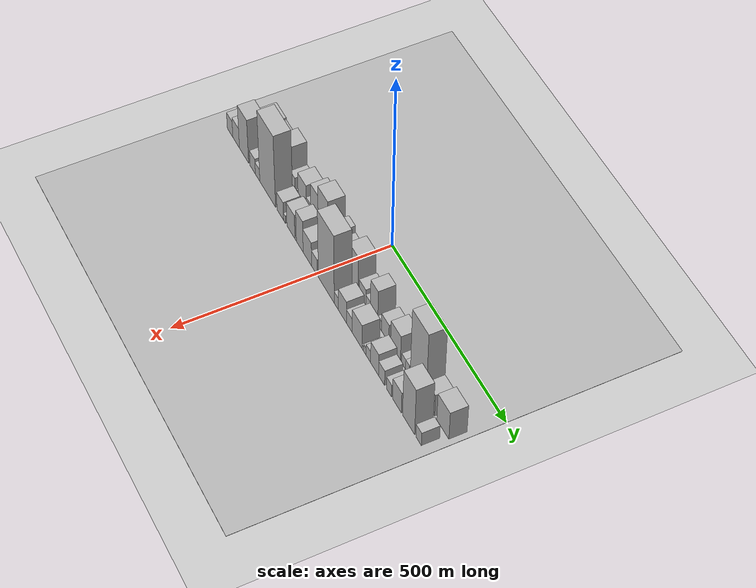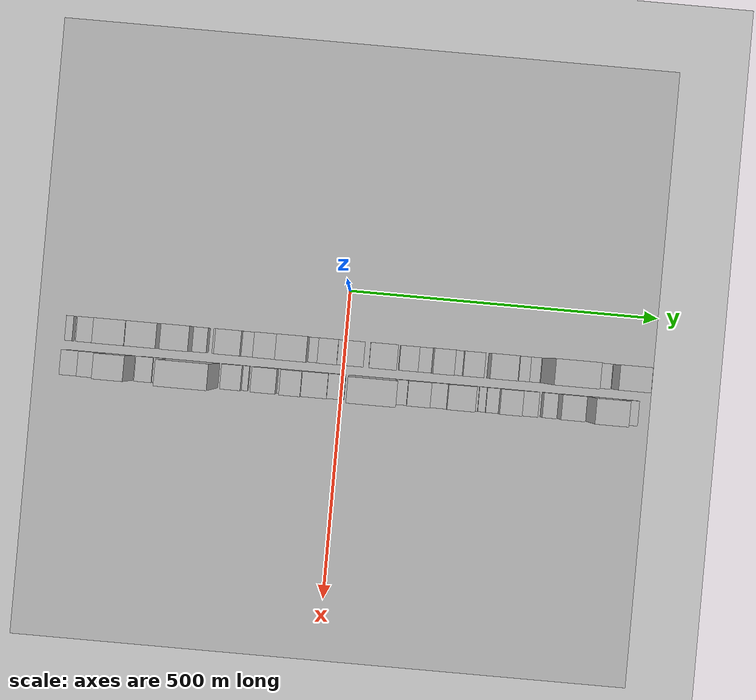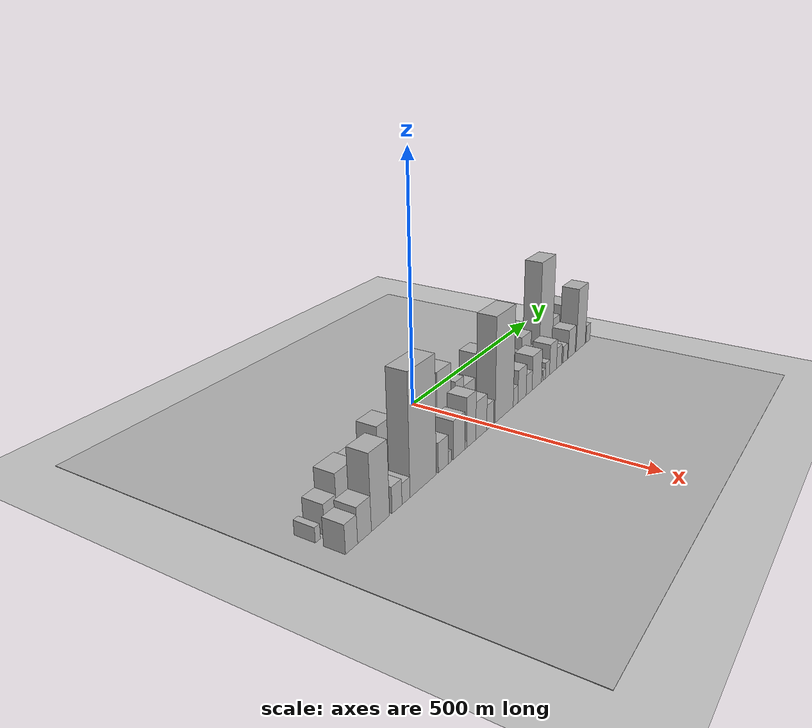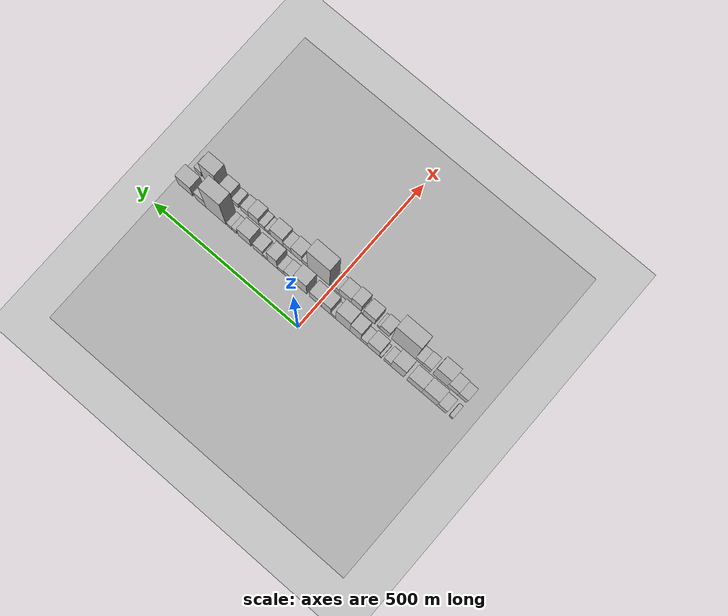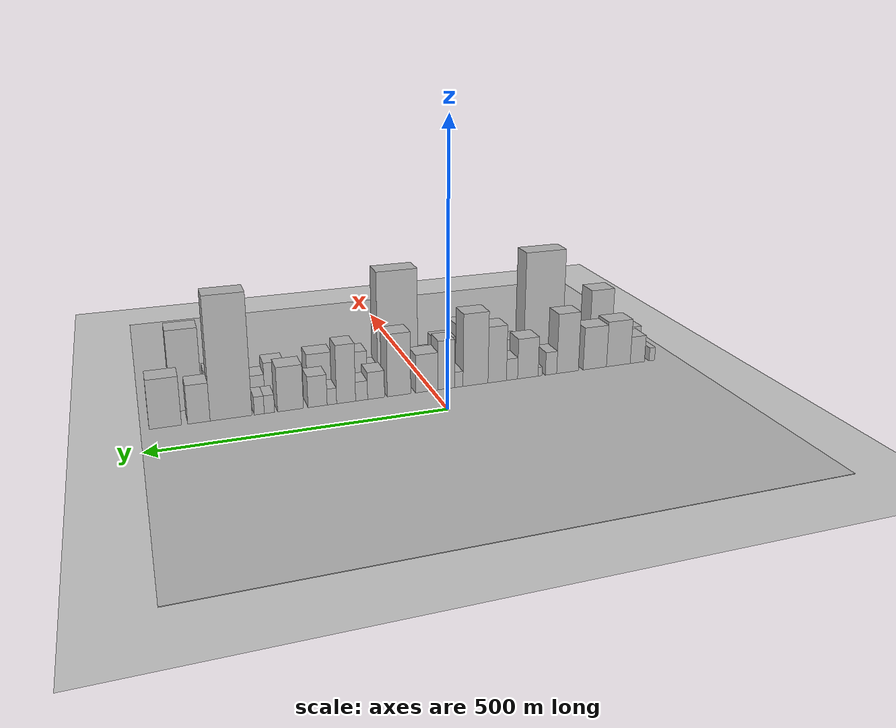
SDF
<sdf version="1.6">
 <world name="default">
  <include><name>ground_plane_1</name><uri>model://HANNAS_ground_plane</uri></include>
  <include>
   <name>ground_plane_2</name>
   <uri>model://HANNAS_ground_plane</uri>
   <pose>100 0 0  0 0 0</pose>
  </include>
  <model name="building_1">
   <static>1</static>
   <pose>100.0000 -443.9677 0 0.000000 0.000000 0.000000</pose>
   <link name="link">
    <pose>0 0 13.50 0 0 0</pose>
    <collision name="collision"><geometry><box><size>40.0000 12.0645 27.0000</size></box></geometry></collision>
    <visual name="visual">
     <cast_shadows>0</cast_shadows>
     <geometry><box><size>40.0000 12.0645 27.0000</size></box></geometry>
     <material>
      <script>
       <uri>model://HANNAS_wall/materials/scripts</uri>
       <uri>model://HANNAS_wall/materials/textures</uri>
       <name>vrc/HANNAS_wall</name>
      </script>
     </material>
    </visual>
   </link>
  </model>
  <model name="building_2">
   <static>1</static>
   <pose>100.0000 -412.5164 0 0.000000 0.000000 0.000000</pose>
   <link name="link">
    <pose>0 0 27.00 0 0 0</pose>
    <collision name="collision"><geometry><box><size>40.0000 30.8381 54.0000</size></box></geometry></collision>
    <visual name="visual">
     <cast_shadows>0</cast_shadows>
     <geometry><box><size>40.0000 30.8381 54.0000</size></box></geometry>
     <material>
      <script>
       <uri>model://HANNAS_wall/materials/scripts</uri>
       <uri>model://HANNAS_wall/materials/textures</uri>
       <name>vrc/HANNAS_wall</name>
      </script>
     </material>
    </visual>
   </link>
  </model>
  <model name="building_3">
   <static>1</static>
   <pose>100.0000 -371.8152 0 0.000000 0.000000 0.000000</pose>
   <link name="link">
    <pose>0 0 45.00 0 0 0</pose>
    <collision name="collision"><geometry><box><size>40.0000 50.5644 90.0000</size></box></geometry></collision>
    <visual name="visual">
     <cast_shadows>0</cast_shadows>
     <geometry><box><size>40.0000 50.5644 90.0000</size></box></geometry>
     <material>
      <script>
       <uri>model://HANNAS_wall/materials/scripts</uri>
       <uri>model://HANNAS_wall/materials/textures</uri>
       <name>vrc/HANNAS_wall</name>
      </script>
     </material>
    </visual>
   </link>
  </model>
  <model name="building_4">
   <static>1</static>
   <pose>100.0000 -322.0864 0 0.000000 0.000000 0.000000</pose>
   <link name="link">
    <pose>0 0 42.00 0 0 0</pose>
    <collision name="collision"><geometry><box><size>40.0000 48.8930 84.0000</size></box></geometry></collision>
    <visual name="visual">
     <cast_shadows>0</cast_shadows>
     <geometry><box><size>40.0000 48.8930 84.0000</size></box></geometry>
     <material>
      <script>
       <uri>model://HANNAS_wall/materials/scripts</uri>
       <uri>model://HANNAS_wall/materials/textures</uri>
       <name>vrc/HANNAS_wall</name>
      </script>
     </material>
    </visual>
   </link>
  </model>
  <model name="building_5">
   <static>1</static>
   <pose>100.0000 -265.3975 0 0.000000 0.000000 0.000000</pose>
   <link name="link">
    <pose>0 0 58.50 0 0 0</pose>
    <collision name="collision"><geometry><box><size>40.0000 44.4849 117.0000</size></box></geometry></collision>
    <visual name="visual">
     <cast_shadows>0</cast_shadows>
     <geometry><box><size>40.0000 44.4849 117.0000</size></box></geometry>
     <material>
      <script>
       <uri>model://HANNAS_wall/materials/scripts</uri>
       <uri>model://HANNAS_wall/materials/textures</uri>
       <name>vrc/HANNAS_wall</name>
      </script>
     </material>
    </visual>
   </link>
  </model>
  <model name="building_6">
   <static>1</static>
   <pose>100.0000 -231.6720 0 0.000000 0.000000 0.000000</pose>
   <link name="link">
    <pose>0 0 22.50 0 0 0</pose>
    <collision name="collision"><geometry><box><size>40.0000 22.9660 45.0000</size></box></geometry></collision>
    <visual name="visual">
     <cast_shadows>0</cast_shadows>
     <geometry><box><size>40.0000 22.9660 45.0000</size></box></geometry>
     <material>
      <script>
       <uri>model://HANNAS_wall/materials/scripts</uri>
       <uri>model://HANNAS_wall/materials/textures</uri>
       <name>vrc/HANNAS_wall</name>
      </script>
     </material>
    </visual>
   </link>
  </model>
  <model name="building_7">
   <static>1</static>
   <pose>100.0000 -209.3410 0 0.000000 0.000000 0.000000</pose>
   <link name="link">
    <pose>0 0 9.00 0 0 0</pose>
    <collision name="collision"><geometry><box><size>40.0000 7.6959 18.0000</size></box></geometry></collision>
    <visual name="visual">
     <cast_shadows>0</cast_shadows>
     <geometry><box><size>40.0000 7.6959 18.0000</size></box></geometry>
     <material>
      <script>
       <uri>model://HANNAS_wall/materials/scripts</uri>
       <uri>model://HANNAS_wall/materials/textures</uri>
       <name>vrc/HANNAS_wall</name>
      </script>
     </material>
    </visual>
   </link>
  </model>
  <model name="building_8">
   <static>1</static>
   <pose>100.0000 -184.9695 0 0.000000 0.000000 0.000000</pose>
   <link name="link">
    <pose>0 0 39.00 0 0 0</pose>
    <collision name="collision"><geometry><box><size>40.0000 41.0471 78.0000</size></box></geometry></collision>
    <visual name="visual">
     <cast_shadows>0</cast_shadows>
     <geometry><box><size>40.0000 41.0471 78.0000</size></box></geometry>
     <material>
      <script>
       <uri>model://HANNAS_wall/materials/scripts</uri>
       <uri>model://HANNAS_wall/materials/textures</uri>
       <name>vrc/HANNAS_wall</name>
      </script>
     </material>
    </visual>
   </link>
  </model>
  <model name="building_9">
   <static>1</static>
   <pose>100.0000 -153.3758 0 0.000000 0.000000 0.000000</pose>
   <link name="link">
    <pose>0 0 21.00 0 0 0</pose>
    <collision name="collision"><geometry><box><size>40.0000 22.1403 42.0000</size></box></geometry></collision>
    <visual name="visual">
     <cast_shadows>0</cast_shadows>
     <geometry><box><size>40.0000 22.1403 42.0000</size></box></geometry>
     <material>
      <script>
       <uri>model://HANNAS_wall/materials/scripts</uri>
       <uri>model://HANNAS_wall/materials/textures</uri>
       <name>vrc/HANNAS_wall</name>
      </script>
     </material>
    </visual>
   </link>
  </model>
  <model name="building_10">
   <static>1</static>
   <pose>100.0000 -124.2434 0 0.000000 0.000000 0.000000</pose>
   <link name="link">
    <pose>0 0 54.00 0 0 0</pose>
    <collision name="collision"><geometry><box><size>40.0000 36.1245 108.0000</size></box></geometry></collision>
    <visual name="visual">
     <cast_shadows>0</cast_shadows>
     <geometry><box><size>40.0000 36.1245 108.0000</size></box></geometry>
     <material>
      <script>
       <uri>model://HANNAS_wall/materials/scripts</uri>
       <uri>model://HANNAS_wall/materials/textures</uri>
       <name>vrc/HANNAS_wall</name>
      </script>
     </material>
    </visual>
   </link>
  </model>
  <model name="building_11">
   <static>1</static>
   <pose>100.0000 -82.0529 0 0.000000 0.000000 0.000000</pose>
   <link name="link">
    <pose>0 0 69.00 0 0 0</pose>
    <collision name="collision"><geometry><box><size>40.0000 48.2566 138.0000</size></box></geometry></collision>
    <visual name="visual">
     <cast_shadows>0</cast_shadows>
     <geometry><box><size>40.0000 48.2566 138.0000</size></box></geometry>
     <material>
      <script>
       <uri>model://HANNAS_wall/materials/scripts</uri>
       <uri>model://HANNAS_wall/materials/textures</uri>
       <name>vrc/HANNAS_wall</name>
      </script>
     </material>
    </visual>
   </link>
  </model>
  <model name="building_12">
   <static>1</static>
   <pose>100.0000 -49.7205 0 0.000000 0.000000 0.000000</pose>
   <link name="link">
    <pose>0 0 15.00 0 0 0</pose>
    <collision name="collision"><geometry><box><size>40.0000 16.4082 30.0000</size></box></geometry></collision>
    <visual name="visual">
     <cast_shadows>0</cast_shadows>
     <geometry><box><size>40.0000 16.4082 30.0000</size></box></geometry>
     <material>
      <script>
       <uri>model://HANNAS_wall/materials/scripts</uri>
       <uri>model://HANNAS_wall/materials/textures</uri>
       <name>vrc/HANNAS_wall</name>
      </script>
     </material>
    </visual>
   </link>
  </model>
  <model name="building_13">
   <static>1</static>
   <pose>100.0000 -26.0423 0 0.000000 0.000000 0.000000</pose>
   <link name="link">
    <pose>0 0 46.50 0 0 0</pose>
    <collision name="collision"><geometry><box><size>40.0000 30.9482 93.0000</size></box></geometry></collision>
    <visual name="visual">
     <cast_shadows>0</cast_shadows>
     <geometry><box><size>40.0000 30.9482 93.0000</size></box></geometry>
     <material>
      <script>
       <uri>model://HANNAS_wall/materials/scripts</uri>
       <uri>model://HANNAS_wall/materials/textures</uri>
       <name>vrc/HANNAS_wall</name>
      </script>
     </material>
    </visual>
   </link>
  </model>
  <model name="building_14">
   <static>1</static>
   <pose>100.0000 10.4422 0 0.000000 0.000000 0.000000</pose>
   <link name="link">
    <pose>0 0 36.00 0 0 0</pose>
    <collision name="collision"><geometry><box><size>40.0000 42.0208 72.0000</size></box></geometry></collision>
    <visual name="visual">
     <cast_shadows>0</cast_shadows>
     <geometry><box><size>40.0000 42.0208 72.0000</size></box></geometry>
     <material>
      <script>
       <uri>model://HANNAS_wall/materials/scripts</uri>
       <uri>model://HANNAS_wall/materials/textures</uri>
       <name>vrc/HANNAS_wall</name>
      </script>
     </material>
    </visual>
   </link>
  </model>
  <model name="building_15">
   <static>1</static>
   <pose>100.0000 61.9743 0 0.000000 0.000000 0.000000</pose>
   <link name="link">
    <pose>0 0 58.50 0 0 0</pose>
    <collision name="collision"><geometry><box><size>40.0000 43.0433 117.0000</size></box></geometry></collision>
    <visual name="visual">
     <cast_shadows>0</cast_shadows>
     <geometry><box><size>40.0000 43.0433 117.0000</size></box></geometry>
     <material>
      <script>
       <uri>model://HANNAS_wall/materials/scripts</uri>
       <uri>model://HANNAS_wall/materials/textures</uri>
       <name>vrc/HANNAS_wall</name>
      </script>
     </material>
    </visual>
   </link>
  </model>
  <model name="building_16">
   <static>1</static>
   <pose>100.0000 103.7671 0 0.000000 0.000000 0.000000</pose>
   <link name="link">
    <pose>0 0 25.50 0 0 0</pose>
    <collision name="collision"><geometry><box><size>40.0000 30.5425 51.0000</size></box></geometry></collision>
    <visual name="visual">
     <cast_shadows>0</cast_shadows>
     <geometry><box><size>40.0000 30.5425 51.0000</size></box></geometry>
     <material>
      <script>
       <uri>model://HANNAS_wall/materials/scripts</uri>
       <uri>model://HANNAS_wall/materials/textures</uri>
       <name>vrc/HANNAS_wall</name>
      </script>
     </material>
    </visual>
   </link>
  </model>
  <model name="building_17">
   <static>1</static>
   <pose>100.0000 129.8214 0 0.000000 0.000000 0.000000</pose>
   <link name="link">
    <pose>0 0 18.00 0 0 0</pose>
    <collision name="collision"><geometry><box><size>40.0000 21.5661 36.0000</size></box></geometry></collision>
    <visual name="visual">
     <cast_shadows>0</cast_shadows>
     <geometry><box><size>40.0000 21.5661 36.0000</size></box></geometry>
     <material>
      <script>
       <uri>model://HANNAS_wall/materials/scripts</uri>
       <uri>model://HANNAS_wall/materials/textures</uri>
       <name>vrc/HANNAS_wall</name>
      </script>
     </material>
    </visual>
   </link>
  </model>
  <model name="building_18">
   <static>1</static>
   <pose>100.0000 157.3962 0 0.000000 0.000000 0.000000</pose>
   <link name="link">
    <pose>0 0 54.00 0 0 0</pose>
    <collision name="collision"><geometry><box><size>40.0000 33.5835 108.0000</size></box></geometry></collision>
    <visual name="visual">
     <cast_shadows>0</cast_shadows>
     <geometry><box><size>40.0000 33.5835 108.0000</size></box></geometry>
     <material>
      <script>
       <uri>model://HANNAS_wall/materials/scripts</uri>
       <uri>model://HANNAS_wall/materials/textures</uri>
       <name>vrc/HANNAS_wall</name>
      </script>
     </material>
    </visual>
   </link>
  </model>
  <model name="building_19">
   <static>1</static>
   <pose>100.0000 182.5155 0 0.000000 0.000000 0.000000</pose>
   <link name="link">
    <pose>0 0 15.00 0 0 0</pose>
    <collision name="collision"><geometry><box><size>40.0000 16.6550 30.0000</size></box></geometry></collision>
    <visual name="visual">
     <cast_shadows>0</cast_shadows>
     <geometry><box><size>40.0000 16.6550 30.0000</size></box></geometry>
     <material>
      <script>
       <uri>model://HANNAS_wall/materials/scripts</uri>
       <uri>model://HANNAS_wall/materials/textures</uri>
       <name>vrc/HANNAS_wall</name>
      </script>
     </material>
    </visual>
   </link>
  </model>
  <model name="building_20">
   <static>1</static>
   <pose>100.0000 207.5057 0 0.000000 0.000000 0.000000</pose>
   <link name="link">
    <pose>0 0 28.50 0 0 0</pose>
    <collision name="collision"><geometry><box><size>40.0000 33.3255 57.0000</size></box></geometry></collision>
    <visual name="visual">
     <cast_shadows>0</cast_shadows>
     <geometry><box><size>40.0000 33.3255 57.0000</size></box></geometry>
     <material>
      <script>
       <uri>model://HANNAS_wall/materials/scripts</uri>
       <uri>model://HANNAS_wall/materials/textures</uri>
       <name>vrc/HANNAS_wall</name>
      </script>
     </material>
    </visual>
   </link>
  </model>
  <model name="building_21">
   <static>1</static>
   <pose>100.0000 254.2897 0 0.000000 0.000000 0.000000</pose>
   <link name="link">
    <pose>0 0 40.50 0 0 0</pose>
    <collision name="collision"><geometry><box><size>40.0000 44.2424 81.0000</size></box></geometry></collision>
    <visual name="visual">
     <cast_shadows>0</cast_shadows>
     <geometry><box><size>40.0000 44.2424 81.0000</size></box></geometry>
     <material>
      <script>
       <uri>model://HANNAS_wall/materials/scripts</uri>
       <uri>model://HANNAS_wall/materials/textures</uri>
       <name>vrc/HANNAS_wall</name>
      </script>
     </material>
    </visual>
   </link>
  </model>
  <model name="building_22">
   <static>1</static>
   <pose>100.0000 290.1348 0 0.000000 0.000000 0.000000</pose>
   <link name="link">
    <pose>0 0 16.50 0 0 0</pose>
    <collision name="collision"><geometry><box><size>40.0000 17.4478 33.0000</size></box></geometry></collision>
    <visual name="visual">
     <cast_shadows>0</cast_shadows>
     <geometry><box><size>40.0000 17.4478 33.0000</size></box></geometry>
     <material>
      <script>
       <uri>model://HANNAS_wall/materials/scripts</uri>
       <uri>model://HANNAS_wall/materials/textures</uri>
       <name>vrc/HANNAS_wall</name>
      </script>
     </material>
    </visual>
   </link>
  </model>
  <model name="building_23">
   <static>1</static>
   <pose>100.0000 307.1842 0 0.000000 0.000000 0.000000</pose>
   <link name="link">
    <pose>0 0 16.50 0 0 0</pose>
    <collision name="collision"><geometry><box><size>40.0000 16.6511 33.0000</size></box></geometry></collision>
    <visual name="visual">
     <cast_shadows>0</cast_shadows>
     <geometry><box><size>40.0000 16.6511 33.0000</size></box></geometry>
     <material>
      <script>
       <uri>model://HANNAS_wall/materials/scripts</uri>
       <uri>model://HANNAS_wall/materials/textures</uri>
       <name>vrc/HANNAS_wall</name>
      </script>
     </material>
    </visual>
   </link>
  </model>
  <model name="building_24">
   <static>1</static>
   <pose>100.0000 354.0105 0 0.000000 0.000000 0.000000</pose>
   <link name="link">
    <pose>0 0 109.50 0 0 0</pose>
    <collision name="collision"><geometry><box><size>40.0000 69.0015 219.0000</size></box></geometry></collision>
    <visual name="visual">
     <cast_shadows>0</cast_shadows>
     <geometry><box><size>40.0000 69.0015 219.0000</size></box></geometry>
     <material>
      <script>
       <uri>model://HANNAS_wall/materials/scripts</uri>
       <uri>model://HANNAS_wall/materials/textures</uri>
       <name>vrc/HANNAS_wall</name>
      </script>
     </material>
    </visual>
   </link>
  </model>
  <model name="building_25">
   <static>1</static>
   <pose>100.0000 406.6519 0 0.000000 0.000000 0.000000</pose>
   <link name="link">
    <pose>0 0 34.50 0 0 0</pose>
    <collision name="collision"><geometry><box><size>40.0000 36.2813 69.0000</size></box></geometry></collision>
    <visual name="visual">
     <cast_shadows>0</cast_shadows>
     <geometry><box><size>40.0000 36.2813 69.0000</size></box></geometry>
     <material>
      <script>
       <uri>model://HANNAS_wall/materials/scripts</uri>
       <uri>model://HANNAS_wall/materials/textures</uri>
       <name>vrc/HANNAS_wall</name>
      </script>
     </material>
    </visual>
   </link>
  </model>
  <model name="building_26">
   <static>1</static>
   <pose>100.0000 460.4318 0 0.000000 0.000000 0.000000</pose>
   <link name="link">
    <pose>0 0 43.50 0 0 0</pose>
    <collision name="collision"><geometry><box><size>40.0000 51.2785 87.0000</size></box></geometry></collision>
    <visual name="visual">
     <cast_shadows>0</cast_shadows>
     <geometry><box><size>40.0000 51.2785 87.0000</size></box></geometry>
     <material>
      <script>
       <uri>model://HANNAS_wall/materials/scripts</uri>
       <uri>model://HANNAS_wall/materials/textures</uri>
       <name>vrc/HANNAS_wall</name>
      </script>
     </material>
    </visual>
   </link>
  </model>
  <model name="building_27">
   <static>1</static>
   <pose>155.0000 -435.2733 0 0.000000 0.000000 0.000000</pose>
   <link name="link">
    <pose>0 0 25.50 0 0 0</pose>
    <collision name="collision"><geometry><box><size>40.0000 29.4535 51.0000</size></box></geometry></collision>
    <visual name="visual">
     <cast_shadows>0</cast_shadows>
     <geometry><box><size>40.0000 29.4535 51.0000</size></box></geometry>
     <material>
      <script>
       <uri>model://HANNAS_wall/materials/scripts</uri>
       <uri>model://HANNAS_wall/materials/textures</uri>
       <name>vrc/HANNAS_wall</name>
      </script>
     </material>
    </visual>
   </link>
  </model>
  <model name="building_28">
   <static>1</static>
   <pose>155.0000 -403.1436 0 0.000000 0.000000 0.000000</pose>
   <link name="link">
    <pose>0 0 31.50 0 0 0</pose>
    <collision name="collision"><geometry><box><size>40.0000 34.8059 63.0000</size></box></geometry></collision>
    <visual name="visual">
     <cast_shadows>0</cast_shadows>
     <geometry><box><size>40.0000 34.8059 63.0000</size></box></geometry>
     <material>
      <script>
       <uri>model://HANNAS_wall/materials/scripts</uri>
       <uri>model://HANNAS_wall/materials/textures</uri>
       <name>vrc/HANNAS_wall</name>
      </script>
     </material>
    </visual>
   </link>
  </model>
  <model name="building_29">
   <static>1</static>
   <pose>155.0000 -361.7392 0 0.000000 0.000000 0.000000</pose>
   <link name="link">
    <pose>0 0 67.50 0 0 0</pose>
    <collision name="collision"><geometry><box><size>40.0000 48.0028 135.0000</size></box></geometry></collision>
    <visual name="visual">
     <cast_shadows>0</cast_shadows>
     <geometry><box><size>40.0000 48.0028 135.0000</size></box></geometry>
     <material>
      <script>
       <uri>model://HANNAS_wall/materials/scripts</uri>
       <uri>model://HANNAS_wall/materials/textures</uri>
       <name>vrc/HANNAS_wall</name>
      </script>
     </material>
    </visual>
   </link>
  </model>
  <model name="building_30">
   <static>1</static>
   <pose>155.0000 -316.8904 0 0.000000 0.000000 0.000000</pose>
   <link name="link">
    <pose>0 0 24.00 0 0 0</pose>
    <collision name="collision"><geometry><box><size>40.0000 27.6949 48.0000</size></box></geometry></collision>
    <visual name="visual">
     <cast_shadows>0</cast_shadows>
     <geometry><box><size>40.0000 27.6949 48.0000</size></box></geometry>
     <material>
      <script>
       <uri>model://HANNAS_wall/materials/scripts</uri>
       <uri>model://HANNAS_wall/materials/textures</uri>
       <name>vrc/HANNAS_wall</name>
      </script>
     </material>
    </visual>
   </link>
  </model>
  <model name="building_31">
   <static>1</static>
   <pose>155.0000 -291.4762 0 0.000000 0.000000 0.000000</pose>
   <link name="link">
    <pose>0 0 19.50 0 0 0</pose>
    <collision name="collision"><geometry><box><size>40.0000 23.1334 39.0000</size></box></geometry></collision>
    <visual name="visual">
     <cast_shadows>0</cast_shadows>
     <geometry><box><size>40.0000 23.1334 39.0000</size></box></geometry>
     <material>
      <script>
       <uri>model://HANNAS_wall/materials/scripts</uri>
       <uri>model://HANNAS_wall/materials/textures</uri>
       <name>vrc/HANNAS_wall</name>
      </script>
     </material>
    </visual>
   </link>
  </model>
  <model name="building_32">
   <static>1</static>
   <pose>155.0000 -239.8865 0 0.000000 0.000000 0.000000</pose>
   <link name="link">
    <pose>0 0 111.00 0 0 0</pose>
    <collision name="collision"><geometry><box><size>40.0000 80.0461 222.0000</size></box></geometry></collision>
    <visual name="visual">
     <cast_shadows>0</cast_shadows>
     <geometry><box><size>40.0000 80.0461 222.0000</size></box></geometry>
     <material>
      <script>
       <uri>model://HANNAS_wall/materials/scripts</uri>
       <uri>model://HANNAS_wall/materials/textures</uri>
       <name>vrc/HANNAS_wall</name>
      </script>
     </material>
    </visual>
   </link>
  </model>
  <model name="building_33">
   <static>1</static>
   <pose>155.0000 -176.5299 0 0.000000 0.000000 0.000000</pose>
   <link name="link">
    <pose>0 0 28.50 0 0 0</pose>
    <collision name="collision"><geometry><box><size>40.0000 32.6672 57.0000</size></box></geometry></collision>
    <visual name="visual">
     <cast_shadows>0</cast_shadows>
     <geometry><box><size>40.0000 32.6672 57.0000</size></box></geometry>
     <material>
      <script>
       <uri>model://HANNAS_wall/materials/scripts</uri>
       <uri>model://HANNAS_wall/materials/textures</uri>
       <name>vrc/HANNAS_wall</name>
      </script>
     </material>
    </visual>
   </link>
  </model>
  <model name="building_34">
   <static>1</static>
   <pose>155.0000 -155.2736 0 0.000000 0.000000 0.000000</pose>
   <link name="link">
    <pose>0 0 12.00 0 0 0</pose>
    <collision name="collision"><geometry><box><size>40.0000 9.8454 24.0000</size></box></geometry></collision>
    <visual name="visual">
     <cast_shadows>0</cast_shadows>
     <geometry><box><size>40.0000 9.8454 24.0000</size></box></geometry>
     <material>
      <script>
       <uri>model://HANNAS_wall/materials/scripts</uri>
       <uri>model://HANNAS_wall/materials/textures</uri>
       <name>vrc/HANNAS_wall</name>
      </script>
     </material>
    </visual>
   </link>
  </model>
  <model name="building_35">
   <static>1</static>
   <pose>155.0000 -123.4473 0 0.000000 0.000000 0.000000</pose>
   <link name="link">
    <pose>0 0 37.50 0 0 0</pose>
    <collision name="collision"><geometry><box><size>40.0000 39.8073 75.0000</size></box></geometry></collision>
    <visual name="visual">
     <cast_shadows>0</cast_shadows>
     <geometry><box><size>40.0000 39.8073 75.0000</size></box></geometry>
     <material>
      <script>
       <uri>model://HANNAS_wall/materials/scripts</uri>
       <uri>model://HANNAS_wall/materials/textures</uri>
       <name>vrc/HANNAS_wall</name>
      </script>
     </material>
    </visual>
   </link>
  </model>
  <model name="building_36">
   <static>1</static>
   <pose>155.0000 -100.0903 0 0.000000 0.000000 0.000000</pose>
   <link name="link">
    <pose>0 0 7.50 0 0 0</pose>
    <collision name="collision"><geometry><box><size>40.0000 6.9066 15.0000</size></box></geometry></collision>
    <visual name="visual">
     <cast_shadows>0</cast_shadows>
     <geometry><box><size>40.0000 6.9066 15.0000</size></box></geometry>
     <material>
      <script>
       <uri>model://HANNAS_wall/materials/scripts</uri>
       <uri>model://HANNAS_wall/materials/textures</uri>
       <name>vrc/HANNAS_wall</name>
      </script>
     </material>
    </visual>
   </link>
  </model>
  <model name="building_37">
   <static>1</static>
   <pose>155.0000 -79.9661 0 0.000000 0.000000 0.000000</pose>
   <link name="link">
    <pose>0 0 49.50 0 0 0</pose>
    <collision name="collision"><geometry><box><size>40.0000 33.3418 99.0000</size></box></geometry></collision>
    <visual name="visual">
     <cast_shadows>0</cast_shadows>
     <geometry><box><size>40.0000 33.3418 99.0000</size></box></geometry>
     <material>
      <script>
       <uri>model://HANNAS_wall/materials/scripts</uri>
       <uri>model://HANNAS_wall/materials/textures</uri>
       <name>vrc/HANNAS_wall</name>
      </script>
     </material>
    </visual>
   </link>
  </model>
  <model name="building_38">
   <static>1</static>
   <pose>155.0000 -42.7566 0 0.000000 0.000000 0.000000</pose>
   <link name="link">
    <pose>0 0 37.50 0 0 0</pose>
    <collision name="collision"><geometry><box><size>40.0000 41.0773 75.0000</size></box></geometry></collision>
    <visual name="visual">
     <cast_shadows>0</cast_shadows>
     <geometry><box><size>40.0000 41.0773 75.0000</size></box></geometry>
     <material>
      <script>
       <uri>model://HANNAS_wall/materials/scripts</uri>
       <uri>model://HANNAS_wall/materials/textures</uri>
       <name>vrc/HANNAS_wall</name>
      </script>
     </material>
    </visual>
   </link>
  </model>
  <model name="building_39">
   <static>1</static>
   <pose>155.0000 -8.5546 0 0.000000 0.000000 0.000000</pose>
   <link name="link">
    <pose>0 0 25.50 0 0 0</pose>
    <collision name="collision"><geometry><box><size>40.0000 27.3267 51.0000</size></box></geometry></collision>
    <visual name="visual">
     <cast_shadows>0</cast_shadows>
     <geometry><box><size>40.0000 27.3267 51.0000</size></box></geometry>
     <material>
      <script>
       <uri>model://HANNAS_wall/materials/scripts</uri>
       <uri>model://HANNAS_wall/materials/textures</uri>
       <name>vrc/HANNAS_wall</name>
      </script>
     </material>
    </visual>
   </link>
  </model>
  <model name="building_40">
   <static>1</static>
   <pose>155.0000 47.7922 0 0.000000 0.000000 0.000000</pose>
   <link name="link">
    <pose>0 0 106.50 0 0 0</pose>
    <collision name="collision"><geometry><box><size>40.0000 75.3671 213.0000</size></box></geometry></collision>
    <visual name="visual">
     <cast_shadows>0</cast_shadows>
     <geometry><box><size>40.0000 75.3671 213.0000</size></box></geometry>
     <material>
      <script>
       <uri>model://HANNAS_wall/materials/scripts</uri>
       <uri>model://HANNAS_wall/materials/textures</uri>
       <name>vrc/HANNAS_wall</name>
      </script>
     </material>
    </visual>
   </link>
  </model>
  <model name="building_41">
   <static>1</static>
   <pose>155.0000 95.4780 0 0.000000 0.000000 0.000000</pose>
   <link name="link">
    <pose>0 0 19.50 0 0 0</pose>
    <collision name="collision"><geometry><box><size>40.0000 20.0044 39.0000</size></box></geometry></collision>
    <visual name="visual">
     <cast_shadows>0</cast_shadows>
     <geometry><box><size>40.0000 20.0044 39.0000</size></box></geometry>
     <material>
      <script>
       <uri>model://HANNAS_wall/materials/scripts</uri>
       <uri>model://HANNAS_wall/materials/textures</uri>
       <name>vrc/HANNAS_wall</name>
      </script>
     </material>
    </visual>
   </link>
  </model>
  <model name="building_42">
   <static>1</static>
   <pose>155.0000 123.9467 0 0.000000 0.000000 0.000000</pose>
   <link name="link">
    <pose>0 0 34.50 0 0 0</pose>
    <collision name="collision"><geometry><box><size>40.0000 36.9331 69.0000</size></box></geometry></collision>
    <visual name="visual">
     <cast_shadows>0</cast_shadows>
     <geometry><box><size>40.0000 36.9331 69.0000</size></box></geometry>
     <material>
      <script>
       <uri>model://HANNAS_wall/materials/scripts</uri>
       <uri>model://HANNAS_wall/materials/textures</uri>
       <name>vrc/HANNAS_wall</name>
      </script>
     </material>
    </visual>
   </link>
  </model>
  <model name="building_43">
   <static>1</static>
   <pose>155.0000 155.9110 0 0.000000 0.000000 0.000000</pose>
   <link name="link">
    <pose>0 0 22.50 0 0 0</pose>
    <collision name="collision"><geometry><box><size>40.0000 26.9955 45.0000</size></box></geometry></collision>
    <visual name="visual">
     <cast_shadows>0</cast_shadows>
     <geometry><box><size>40.0000 26.9955 45.0000</size></box></geometry>
     <material>
      <script>
       <uri>model://HANNAS_wall/materials/scripts</uri>
       <uri>model://HANNAS_wall/materials/textures</uri>
       <name>vrc/HANNAS_wall</name>
      </script>
     </material>
    </visual>
   </link>
  </model>
  <model name="building_44">
   <static>1</static>
   <pose>155.0000 191.6743 0 0.000000 0.000000 0.000000</pose>
   <link name="link">
    <pose>0 0 37.50 0 0 0</pose>
    <collision name="collision"><geometry><box><size>40.0000 44.5312 75.0000</size></box></geometry></collision>
    <visual name="visual">
     <cast_shadows>0</cast_shadows>
     <geometry><box><size>40.0000 44.5312 75.0000</size></box></geometry>
     <material>
      <script>
       <uri>model://HANNAS_wall/materials/scripts</uri>
       <uri>model://HANNAS_wall/materials/textures</uri>
       <name>vrc/HANNAS_wall</name>
      </script>
     </material>
    </visual>
   </link>
  </model>
  <model name="building_45">
   <static>1</static>
   <pose>155.0000 217.5065 0 0.000000 0.000000 0.000000</pose>
   <link name="link">
    <pose>0 0 7.50 0 0 0</pose>
    <collision name="collision"><geometry><box><size>40.0000 7.1330 15.0000</size></box></geometry></collision>
    <visual name="visual">
     <cast_shadows>0</cast_shadows>
     <geometry><box><size>40.0000 7.1330 15.0000</size></box></geometry>
     <material>
      <script>
       <uri>model://HANNAS_wall/materials/scripts</uri>
       <uri>model://HANNAS_wall/materials/textures</uri>
       <name>vrc/HANNAS_wall</name>
      </script>
     </material>
    </visual>
   </link>
  </model>
  <model name="building_46">
   <static>1</static>
   <pose>155.0000 227.0482 0 0.000000 0.000000 0.000000</pose>
   <link name="link">
    <pose>0 0 12.00 0 0 0</pose>
    <collision name="collision"><geometry><box><size>40.0000 11.9505 24.0000</size></box></geometry></collision>
    <visual name="visual">
     <cast_shadows>0</cast_shadows>
     <geometry><box><size>40.0000 11.9505 24.0000</size></box></geometry>
     <material>
      <script>
       <uri>model://HANNAS_wall/materials/scripts</uri>
       <uri>model://HANNAS_wall/materials/textures</uri>
       <name>vrc/HANNAS_wall</name>
      </script>
     </material>
    </visual>
   </link>
  </model>
  <model name="building_47">
   <static>1</static>
   <pose>155.0000 243.0945 0 0.000000 0.000000 0.000000</pose>
   <link name="link">
    <pose>0 0 18.00 0 0 0</pose>
    <collision name="collision"><geometry><box><size>40.0000 20.1419 36.0000</size></box></geometry></collision>
    <visual name="visual">
     <cast_shadows>0</cast_shadows>
     <geometry><box><size>40.0000 20.1419 36.0000</size></box></geometry>
     <material>
      <script>
       <uri>model://HANNAS_wall/materials/scripts</uri>
       <uri>model://HANNAS_wall/materials/textures</uri>
       <name>vrc/HANNAS_wall</name>
      </script>
     </material>
    </visual>
   </link>
  </model>
  <model name="building_48">
   <static>1</static>
   <pose>155.0000 271.0363 0 0.000000 0.000000 0.000000</pose>
   <link name="link">
    <pose>0 0 34.50 0 0 0</pose>
    <collision name="collision"><geometry><box><size>40.0000 35.7419 69.0000</size></box></geometry></collision>
    <visual name="visual">
     <cast_shadows>0</cast_shadows>
     <geometry><box><size>40.0000 35.7419 69.0000</size></box></geometry>
     <material>
      <script>
       <uri>model://HANNAS_wall/materials/scripts</uri>
       <uri>model://HANNAS_wall/materials/textures</uri>
       <name>vrc/HANNAS_wall</name>
      </script>
     </material>
    </visual>
   </link>
  </model>
  <model name="building_49">
   <static>1</static>
   <pose>155.0000 302.3308 0 0.000000 0.000000 0.000000</pose>
   <link name="link">
    <pose>0 0 24.00 0 0 0</pose>
    <collision name="collision"><geometry><box><size>40.0000 26.8471 48.0000</size></box></geometry></collision>
    <visual name="visual">
     <cast_shadows>0</cast_shadows>
     <geometry><box><size>40.0000 26.8471 48.0000</size></box></geometry>
     <material>
      <script>
       <uri>model://HANNAS_wall/materials/scripts</uri>
       <uri>model://HANNAS_wall/materials/textures</uri>
       <name>vrc/HANNAS_wall</name>
      </script>
     </material>
    </visual>
   </link>
  </model>
  <model name="building_50">
   <static>1</static>
   <pose>155.0000 335.3924 0 0.000000 0.000000 0.000000</pose>
   <link name="link">
    <pose>0 0 19.50 0 0 0</pose>
    <collision name="collision"><geometry><box><size>40.0000 23.2760 39.0000</size></box></geometry></collision>
    <visual name="visual">
     <cast_shadows>0</cast_shadows>
     <geometry><box><size>40.0000 23.2760 39.0000</size></box></geometry>
     <material>
      <script>
       <uri>model://HANNAS_wall/materials/scripts</uri>
       <uri>model://HANNAS_wall/materials/textures</uri>
       <name>vrc/HANNAS_wall</name>
      </script>
     </material>
    </visual>
   </link>
  </model>
  <model name="building_51">
   <static>1</static>
   <pose>155.0000 370.4337 0 0.000000 0.000000 0.000000</pose>
   <link name="link">
    <pose>0 0 33.00 0 0 0</pose>
    <collision name="collision"><geometry><box><size>40.0000 38.8066 66.0000</size></box></geometry></collision>
    <visual name="visual">
     <cast_shadows>0</cast_shadows>
     <geometry><box><size>40.0000 38.8066 66.0000</size></box></geometry>
     <material>
      <script>
       <uri>model://HANNAS_wall/materials/scripts</uri>
       <uri>model://HANNAS_wall/materials/textures</uri>
       <name>vrc/HANNAS_wall</name>
      </script>
     </material>
    </visual>
   </link>
  </model>
  <model name="building_52">
   <static>1</static>
   <pose>155.0000 421.0906 0 0.000000 0.000000 0.000000</pose>
   <link name="link">
    <pose>0 0 73.50 0 0 0</pose>
    <collision name="collision"><geometry><box><size>40.0000 52.5072 147.0000</size></box></geometry></collision>
    <visual name="visual">
     <cast_shadows>0</cast_shadows>
     <geometry><box><size>40.0000 52.5072 147.0000</size></box></geometry>
     <material>
      <script>
       <uri>model://HANNAS_wall/materials/scripts</uri>
       <uri>model://HANNAS_wall/materials/textures</uri>
       <name>vrc/HANNAS_wall</name>
      </script>
     </material>
    </visual>
   </link>
  </model>
  <model name="building_53">
   <static>1</static>
   <pose>155.0000 464.2406 0 0.000000 0.000000 0.000000</pose>
   <link name="link">
    <pose>0 0 21.00 0 0 0</pose>
    <collision name="collision"><geometry><box><size>40.0000 23.7927 42.0000</size></box></geometry></collision>
    <visual name="visual">
     <cast_shadows>0</cast_shadows>
     <geometry><box><size>40.0000 23.7927 42.0000</size></box></geometry>
     <material>
      <script>
       <uri>model://HANNAS_wall/materials/scripts</uri>
       <uri>model://HANNAS_wall/materials/textures</uri>
       <name>vrc/HANNAS_wall</name>
      </script>
     </material>
    </visual>
   </link>
  </model>
 </world>
</sdf>
